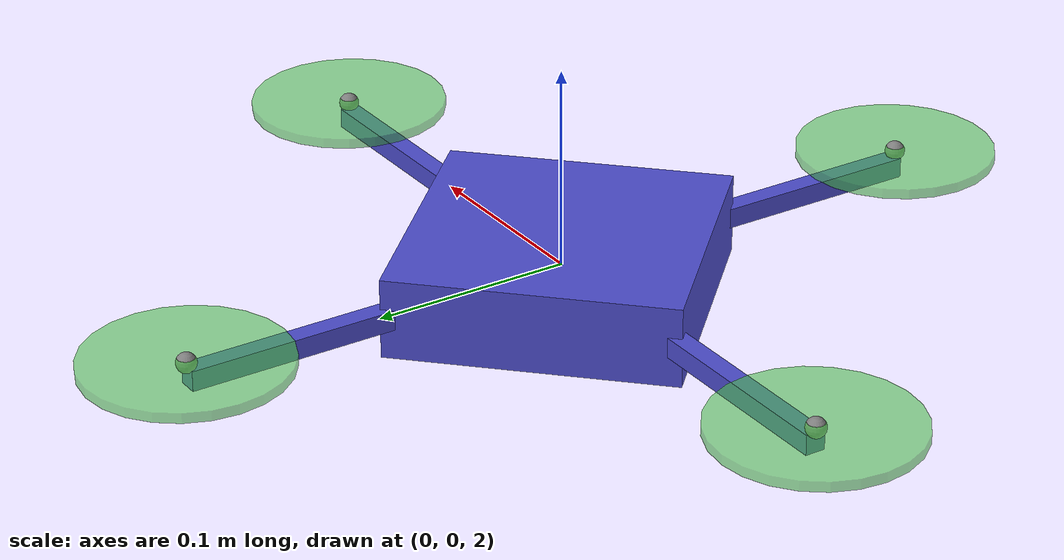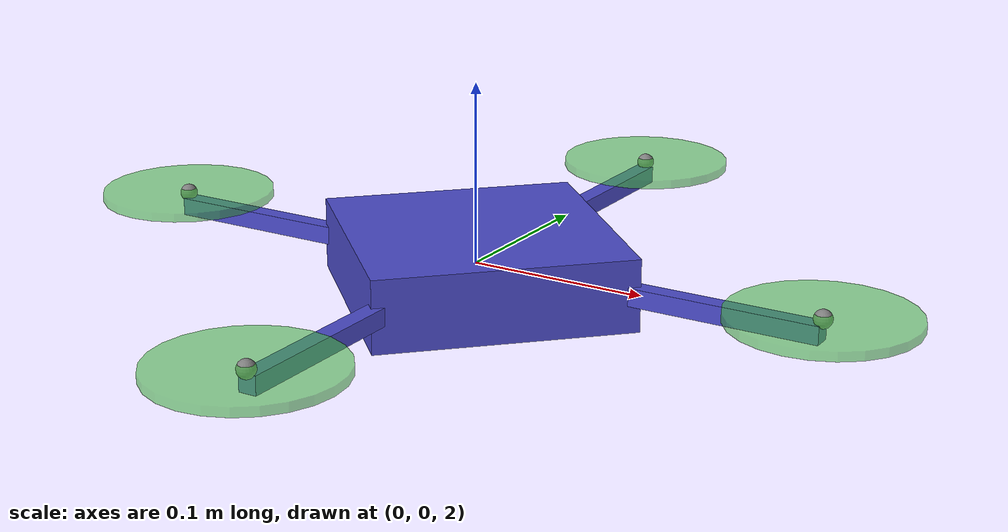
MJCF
<mujoco>
    <option gravity="0 0 -9.81"/>
    <asset>
        <texture builtin="gradient" type="skybox" height="100" width="100" rgb1="1 1 1" rgb2="0 0 0"/>
        <texture name="texgeom" builtin="flat" height="1278" mark="cross" markrgb="1 1 1" random="0.01" rgb1="0.8 0.6 0.4" rgb2="0.8 0.6 0.4" type="cube" width="127"/>
        <texture name="texplane" builtin="checker" height="100" width="100" rgb1="0 0 0" rgb2="0.8 0.8 0.8" type="2d"/>
        <material name="MatPlane" reflectance="0.5" shininess="1" specular="1" texrepeat="60 60" texture="texplane"/>
        <material name="geom" texture="texgeom" texuniform="true"/>
    </asset>
    <worldbody>
        <light diffuse=".5 .5 .5" pos="0 0 3" dir="0 0 -1"/>
        <geom type="plane" size="1 1 1" rgba=".9 0 0 1"/>
        <body pos="0 0 2" euler="0 0 0" name="body">
            <geom name="core_geom" type="box" pos="0 0 0" euler="0 0 45" size="0.0707 0.0707 .02" rgba=".3 .3 .8 1"/>

            <geom name="arm_front_left" type="box" pos=".1 0 0" size=".1 .005 .005" euler="0 0 0" rgba=".3 .3 .8 1"/>
            <geom name="arm_front_right" type="box" pos="0 .1 0" size=".1 .005 .005" euler="0 0 90" rgba=".3 .3 .8 1"/>
            <geom name="arm_back_right" type="box" pos="-.1 0 0" size=".1 .005 .005" euler="0 0 0" rgba=".3 .3 .8 1"/>
            <geom name="arm_back_left" type="box" pos="0 -.1 0" size=".1 .005 .005" euler="0 0 90" rgba=".3 .3 .8 1"/>

            <geom name="thruster_front_left" type="cylinder" pos=".2 0 .0075" size=".05 .0025" quat="1 0 0 0" rgba=".3 .8 .3 0.6"/>
            <geom name="thruster_front_right" type="cylinder" pos="0 .2 .0075" size=".05 .0025" quat="1 0 0 0" rgba=".3 .8 .3 0.6"/>
            <geom name="thruster_back_right" type="cylinder" pos="-.2 0 .0075" size=".05 .0025" quat="1 0 0 0" rgba=".3 .8 .3 0.6"/>
            <geom name="thruster_back_left" type="cylinder" pos="0 -.2 .0075" size=".05 .0025" quat="1 0 0 0" rgba=".3 .8 .3 0.6"/>
            <inertial pos="0 0 0" mass="2.5" diaginertia="2 2 3" />
            <joint name="root" type="free" damping="0" armature="0" pos="0 0 0" limited="false"/>
            <site name="u1" pos =".2 0 .0075"/>
            <site  name="u2" pos ="0 0.2 .0075" />
            <site  name="u3" pos ="-.2 0 .0075" />
            <site  name="u4" pos ="0 -.2 .0075" />
        </body>
    </worldbody>
    <actuator>
        <motor ctrllimited="true" ctrlrange="0 1000" site="u1" gear="0 0 1 0 0 0.1"/>
        <motor ctrllimited="true" ctrlrange="0 1000" site="u2" gear="0 0 1 0 0 -0.1"/>

        <motor ctrllimited="true" ctrlrange="0 1000" site="u3" gear="0 0 1 0 0 0.1"/>

        <motor ctrllimited="true" ctrlrange="0 1000" site="u4" gear="0 0 1 0 0 -0.1"/>
    </actuator>
</mujoco>
